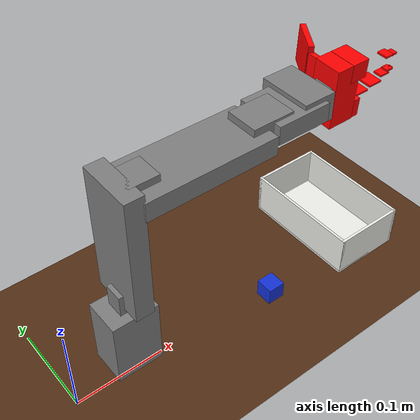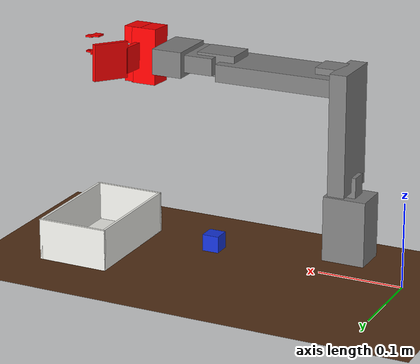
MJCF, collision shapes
<mujoco model="so101_pick_place_scene">

  <compiler angle="radian" autolimits="true" meshdir="../../../so101_assets/assets"/>

  <include file="../../../so101_assets/so101.xml"/>

  <visual>
    <headlight diffuse="0.6 0.6 0.6" ambient="0.3 0.3 0.3" specular="0 0 0"/>
    <rgba haze="0.15 0.25 0.35 1"/>
    <global azimuth="160" elevation="-25"/>
    <quality shadowsize="4096"/>
  </visual>

  <asset>
    <texture type="skybox" builtin="gradient" rgb1="0.3 0.5 0.7"
             rgb2="0 0 0" width="512" height="3072"/>
    <!-- Dark glossy wood, like the bench tabletop. Two near-identical
         browns: enough variation to give the eye a depth cue, not enough
         to read as a checkerboard. -->
    <texture type="2d" name="wood" builtin="checker"
             rgb1="0.34 0.19 0.09" rgb2="0.32 0.18 0.085"
             width="512" height="512"/>
    <material name="wood" texture="wood" texuniform="true"
              texrepeat="10 10" reflectance="0.25" specular="0.4" shininess="0.6"/>
    <material name="cube_mat" rgba="0.08 0.20 0.85 1" specular="0.3" shininess="0.3"/>
    <material name="box_mat" rgba="0.94 0.94 0.92 1" specular="0.1"/>
  </asset>

  <default>
    <default class="cube_collision">
      <!-- Same contact settings as robot_cube_scene.xml -- see its comment
           for why condim=6 and why the jaws' params win the grasp contact. -->
      <geom contype="1" conaffinity="1" condim="6"
            friction="0.8 0.02 0.001" solref="0.01 1" solimp="0.95 0.99 0.001"/>
    </default>
    <default class="box_wall">
      <geom type="box" contype="1" conaffinity="1" condim="3"
            friction="0.6 0.005 0.0001" material="box_mat"/>
    </default>
  </default>

  <worldbody>
    <light pos="0 0 1.5" dir="0 0 -1" directional="true"/>
    <geom name="floor" size="0 0 0.05" type="plane" material="wood"/>

    <!-- Straight down over the cube and the box together. -->
    <camera name="overhead" pos="0.30 0.01 0.80" xyaxes="0 1 0 -1 0 0"/>

    <!-- Roughly where the bench photo was taken from: behind the cube,
         looking out toward the box. -->
    <camera name="bench_view" pos="0.08 -0.01 0.28" mode="targetbody" target="pick_box"/>

    <!-- Wide angle on the whole arm plus both objects. -->
    <camera name="workspace" pos="0.85 -0.70 0.60" mode="targetbody" target="pick_box"/>

    <body name="cube" pos="0.239 -0.012 0.0100">
      <freejoint name="cube_freejoint"/>
      <geom name="cube_geom" type="box" size="0.010 0.010 0.010"
            mass="0.0032" material="cube_mat" class="cube_collision"/>
    </body>

    <body name="pick_box" pos="0.364 0.033 0">
      <geom name="box_bottom" class="box_wall" size="0.0425 0.0700 0.0015" pos="0 0 0.0015"/>
      <geom name="box_wall_near" class="box_wall" size="0.0015 0.0700 0.0245" pos="-0.0410 0 0.0245"/>
      <geom name="box_wall_far" class="box_wall" size="0.0015 0.0700 0.0245" pos="0.0410 0 0.0245"/>
      <geom name="box_wall_left" class="box_wall" size="0.0425 0.0015 0.0245" pos="0 0.0685 0.0245"/>
      <geom name="box_wall_right" class="box_wall" size="0.0425 0.0015 0.0245" pos="0 -0.0685 0.0245"/>
    </body>
  </worldbody>
</mujoco>

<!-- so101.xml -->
<mujoco model="so101">
  <option integrator="implicitfast" timestep="0.005" cone="elliptic" iterations="10" ls_iterations="20" impratio="10"/>

  <compiler angle="radian" autolimits="true"/>

  <visual>
    <scale contactwidth="0.1" contactheight="0.05" forcewidth="0.02" framelength="0.75" framewidth="0.025"
      camera="0.2"/>
  </visual>

  <default>
    <mesh maxhullvert="128"/>

    <default class="so101">
      <joint damping="1" frictionloss="0.1" armature="0.005"/>
      <position kp="50"/>
      <default class="visual">
        <geom type="mesh" contype="0" conaffinity="0" group="2"/>
      </default>
      <default class="collision">
        <geom group="3" condim="3"/>
      </default>
      <default class="collision_gripper">
        <geom group="3" condim="6" friction="0.45 5e-3 5e-4" solref="0.01 1" priority="1" rgba="1.0 0 0 1.0" mass="0"/>
      </default>
      <default class="collision_gripper_mesh">
        <geom group="4" condim="6" friction="1 5e-3 5e-4" solref="0.01 1" priority="1" rgba="1.0 0 0 1.0" mass="0"
          contype="0" conaffinity="0"/>
      </default>
    </default>

    <default class="sts3215">
      <geom contype="0" conaffinity="0"/>
      <joint damping="0.60" frictionloss="0.052" armature="0.028"/>
      <position kp="400" kv="25" forcerange="-2.94 2.94"/>
    </default>

    <default class="backlash">
      <!-- +/- 0.5° of backlash – not added to any joints for now -->
      <joint damping="0.01" frictionloss="0" armature="0.01" limited="true" range="-0.0087267 0.0087267"/>
    </default>
  </default>

  <asset>
    <mesh file="waveshare_mounting_plate_so101_v2.stl"/>
    <mesh file="sts3215_03a_v1.stl"/>
    <mesh file="motor_holder_so101_base_v1.stl"/>
    <mesh file="wrist_roll_follower_so101_v1.stl"/>
    <mesh file="moving_jaw_so101_v1.stl"/>
    <mesh file="base_motor_holder_so101_v1.stl"/>
    <mesh file="upper_arm_so101_v1.stl"/>
    <mesh file="wrist_roll_pitch_so101_v2.stl"/>
    <mesh file="under_arm_so101_v1.stl"/>
    <mesh file="rotation_pitch_so101_v1.stl"/>
    <mesh file="motor_holder_so101_wrist_v1.stl"/>
    <mesh file="sts3215_03a_no_horn_v1.stl"/>
    <mesh file="base_so101_v2.stl"/>
    <mesh file="moving_jaw_so101_gripper_v1.stl"/>
    <mesh file="wrist_roll_follower_so101_camera_mount.stl"/>
    <!-- Gripper collision meshes. -->
    <mesh maxhullvert="64" file="wrist_roll_follower_so101_gripper_part0_v1.stl"/>
    <mesh maxhullvert="64" file="moving_jaw_so101_gripper_part0_v1.stl"/>
    <mesh maxhullvert="64" file="moving_jaw_so101_gripper_part1_v1.stl"/>
    <material name="base_motor_holder_so101_v1_material" rgba="0.94 0.90 0.82 1"/>
    <material name="base_so101_v2_material" rgba="0.94 0.90 0.82 1"/>
    <material name="sts3215_03a_v1_material" rgba="0.15 0.15 0.15 1"/>
    <material name="waveshare_mounting_plate_so101_v2_material" rgba="0.94 0.90 0.82 1"/>
    <material name="motor_holder_so101_base_v1_material" rgba="0.94 0.90 0.82 1"/>
    <material name="rotation_pitch_so101_v1_material" rgba="0.94 0.90 0.82 1"/>
    <material name="upper_arm_so101_v1_material" rgba="0.94 0.90 0.82 1"/>
    <material name="under_arm_so101_v1_material" rgba="0.94 0.90 0.82 1"/>
    <material name="motor_holder_so101_wrist_v1_material" rgba="0.94 0.90 0.82 1"/>
    <material name="sts3215_03a_no_horn_v1_material" rgba="0.15 0.15 0.15 1.0"/>
    <material name="wrist_roll_pitch_so101_v2_material" rgba="0.94 0.90 0.82 1"/>
    <material name="wrist_roll_follower_so101_v1_material" rgba="0.94 0.90 0.82 1"/>
    <material name="moving_jaw_so101_v1_material" rgba="0.94 0.90 0.82 1"/>
  </asset>

  <worldbody>
    <!-- Link base -->
    <body name="base" pos="0 0 0" quat="1 0 0 0" childclass="so101">
      <inertial pos="0.0137179 -5.19711e-05 0.0334843" mass="0.147"
        fullinertia="0.000114686 0.000136117 0.000130364 -4.59787e-07 4.97151e-06 9.75275e-08"/>
      <!-- Part base_motor_holder_so101_v1 -->
      <geom type="mesh" class="visual" pos="-0.006365 -9.9e-05 -0.0024" quat="1 1 1 1" mesh="base_motor_holder_so101_v1"
        material="base_motor_holder_so101_v1_material"/>
      <!-- Part base_so101_v2 -->
      <geom type="mesh" class="visual" pos="-0.006365 0 -0.0024" quat="1 1 1 1" mesh="base_so101_v2"
        material="base_so101_v2_material"/>
      <!-- Part sts3215_03a_v1 -->
      <geom type="mesh" class="visual" pos="0.0263353 0 0.0437" quat="1 0 0 0" mesh="sts3215_03a_v1"
        material="sts3215_03a_v1_material"/>
      <!-- Part waveshare_mounting_plate_so101_v2 -->
      <geom type="mesh" class="visual" pos="-0.0309827 -0.000199 0.0474" quat="1 1 1 1"
        mesh="waveshare_mounting_plate_so101_v2" material="waveshare_mounting_plate_so101_v2_material"/>
      <!-- Frame baseframe -->
      <site group="3" name="baseframe" pos="0 0 0" quat="1 0 0 0"/>
      <!-- Link shoulder -->
      <body name="shoulder" pos="0.0388353 0 0.0624" quat="0 0 -1 0">
        <!-- Joint from base to shoulder -->
        <joint axis="0 0 1" name="shoulder_pan" type="hinge" range="-1.91986 1.91986" class="sts3215"/>
        <inertial pos="-0.0307604 -1.7e-05 -0.0252713" mass="0.100006"
          fullinertia="8.3759e-05 8.10403e-05 2.39783e-05 7.55525e-08 -1.16342e-06 1.54663e-07"/>
        <!-- Part sts3215_03a_v1_2 -->
        <geom type="mesh" class="visual" pos="-0.030399 0.000422 -0.0417" quat="1 1 1 -1" mesh="sts3215_03a_v1"
          material="sts3215_03a_v1_material"/>
        <geom type="box" class="collision" pos="-0.030399 0.000422 -0.0387" quat="1 1 1 -1" size="0.023 0.015 0.01"/>
        <!-- Part motor_holder_so101_base_v1 -->
        <geom type="mesh" class="visual" pos="-0.067599 -0.0001778 0.01585" quat="1 1 -1 1"
          mesh="motor_holder_so101_base_v1" material="motor_holder_so101_base_v1_material"/>
        <geom type="box" class="collision" pos="-0.025 0 0.0" quat="1 1 -1 1" size="0.038 0.025 0.02"/>
        <!-- Part rotation_pitch_so101_v1 -->
        <geom type="mesh" class="visual" pos="0.012201 2.2e-05 0.0464" quat="1 -1 0 0" mesh="rotation_pitch_so101_v1"
          material="rotation_pitch_so101_v1_material"/>
        <!-- Link upper_arm -->
        <body name="upper_arm" pos="-0.0303992 -0.0182778 -0.0542" quat="1 -1 -1 -1">
          <!-- Joint from shoulder to upper_arm -->
          <joint axis="0 0 1" name="shoulder_lift" type="hinge" range="-1.7453293 1.7453293" class="sts3215"/>
          <inertial pos="-0.089847 -0.008382 0.018409" mass="0.103"
            fullinertia="4.08002e-05 0.000147318 0.000142487 -1.97819e-05 -4.03016e-08 8.97326e-09"/>
          <!-- Part sts3215_03a_v1_3 -->
          <geom type="mesh" class="visual" pos="-0.11257 -0.0155 0.0187" quat="0 -1 1 0" mesh="sts3215_03a_v1"
            material="sts3215_03a_v1_material"/>
          <geom type="box" class="collision" pos="-0.06 0 0.02" quat="0 -1 1 0" size="0.01 0.07 0.03"/>
          <!-- Part upper_arm_so101_v1 -->
          <geom type="mesh" class="visual" pos="-0.065085 0.012 0.0182" quat="0 1 0 0" mesh="upper_arm_so101_v1"
            material="upper_arm_so101_v1_material"/>
          <geom type="box" class="collision" pos="-0.12 -0.014 0.0182" quat="0 1 0 0" size="0.01 0.02 0.015"/>
          <!-- Link lower_arm -->
          <body name="lower_arm" pos="-0.11257 -0.028 0" quat="1 0 0 1">
            <!-- Joint from upper_arm to lower_arm -->
            <!-- Note: 5-degree calibration offset applied to joint range -->
            <joint axis="0 0 1" name="elbow_flex" type="hinge" range="-1.69 1.69" class="sts3215"/>
            <inertial pos="-0.098070 0.0032438 0.018283" mass="0.104"
              fullinertia="2.87438e-05 0.000159844 0.00014529 7.41152e-06 1.26409e-06 -4.90188e-08"/>
            <!-- Part under_arm_so101_v1 -->
            <geom type="mesh" class="visual" pos="-0.06485 -0.032 0.0182" quat="0 1 0 0" mesh="under_arm_so101_v1"
              material="under_arm_so101_v1_material"/>
            <geom type="box" class="collision" pos="-0.05 0 0.0182" quat="0 1 0 0" size="0.07 0.01 0.03"/>
            <!-- Part motor_holder_so101_wrist_v1 -->
            <geom type="mesh" class="visual" pos="-0.06485 -0.032 0.018" quat="0 -1 0 0"
              mesh="motor_holder_so101_wrist_v1" material="motor_holder_so101_wrist_v1_material"/>
            <geom type="box" class="collision" pos="-0.125 0.005 0.018" quat="0 -1 0 0" size="0.023 0.013 0.018"/>
            <!-- Part sts3215_03a_v1_4 -->
            <geom type="mesh" class="visual" pos="-0.1224 0.0052 0.0187" quat="0 0 1 0" mesh="sts3215_03a_v1"
              material="sts3215_03a_v1_material"/>
            <!-- Link wrist -->
            <body name="wrist" pos="-0.1349 0.0052 0" quat="1 0 0 -1">
              <!-- Joint from lower_arm to wrist -->
              <joint axis="0 0 1" name="wrist_flex" type="hinge" range="-1.658063 1.658063" class="sts3215"/>
              <inertial pos="-0.000103312 -0.0386143 0.0281156" mass="0.079"
                fullinertia="3.68263e-05 2.5391e-05 2.1e-05 1.7893e-08 -5.28128e-08 3.6412e-06"/>
              <!-- Part sts3215_03a_no_horn_v1 -->
              <geom type="mesh" class="visual" pos="0 -0.0424 0.0306" quat="1 1 1 -1" mesh="sts3215_03a_no_horn_v1"
                material="sts3215_03a_no_horn_v1_material"/>
              <geom type="box" class="collision" pos="0 -0.0424 0.0256" quat="1 1 1 -1" size="0.029 0.015 0.018"/>
              <!-- Part wrist_roll_pitch_so101_v2 -->
              <geom type="mesh" class="visual" pos="0 -0.028 0.0181" quat="1 -1 -1 -1" mesh="wrist_roll_pitch_so101_v2"
                material="wrist_roll_pitch_so101_v2_material"/>
              <geom type="box" class="collision" pos="0 -0.02 0.0191" quat="1 -1 -1 -1" size="0.027 0.01 0.03"/>
              <!-- Link gripper -->
              <body name="gripper" pos="5.55112e-17 -0.0611 0.0181" quat="0.0172091 -0.0172091 0.706897 0.706897">
                <!-- Joint from wrist to gripper -->
                <joint axis="0 0 1" name="wrist_roll" type="hinge" range="-2.7438473 2.7438473" class="sts3215"/>
                <inertial pos="0.000214 0.000245 -0.025187" mass="0.087"
                  fullinertia="2.75087e-05 4.33657e-05 3.45059e-05 -3.35241e-07 -5.7352e-06 -5.17847e-08"/>
                <!-- Part sts3215_03a_v1_5 -->
                <geom type="mesh" class="visual" pos="0.0077 0.0001 -0.0234" quat="1 -1 0 0" mesh="sts3215_03a_v1"
                  material="sts3215_03a_v1_material"/>
                <!-- Part wrist_roll_follower_so101_v1 (fixed jaw) -->
                <geom type="mesh" class="visual" pos="0 -0.000218 0.00095" quat="0 1 0 0"
                  mesh="wrist_roll_follower_so101_v1" material="wrist_roll_follower_so101_v1_material"/>
                <geom type="box" class="collision" pos="0 -0.000218 0.00095" quat="0 1 0 0" size="0.01 0.01 0.018"/>
                <!-- Part wrist_roll_follower_so101_v1 gripper collision  -->
                <geom name="fixed_jaw_box1" class="collision_gripper" type="box" size="0.0325 0.015 0.015"
                  pos="-0.0025 0 -0.022"/>
                <geom name="fixed_jaw_box2" class="collision_gripper" type="box" size="0.01 0.015 0.005"
                  pos="-0.024 0 -0.04"/>
                <geom name="fixed_jaw_sph_tip1" class="collision_gripper" type="sphere" size="0.00075"
                  pos="-0.0081 0 -0.101"/>
                <geom name="fixed_jaw_sph_tip2" class="collision_gripper" type="sphere" size="0.00075"
                  pos="-0.0081 0.0035 -0.0975"/>
                <geom name="fixed_jaw_sph_tip3" class="collision_gripper" type="sphere" size="0.00075"
                  pos="-0.0081 -0.0035 -0.0975"/>
                <geom type="mesh" class="collision_gripper_mesh" pos="0 -0.000218 0.00095" quat="0 1 0 0"
                  mesh="wrist_roll_follower_so101_gripper_part0_v1"/>
                <geom name="fixed_jaw_box3" class="collision_gripper" type="capsule" size="0.0011 0.002"
                  pos="-0.009 0 -0.103" euler="1.57 0 0"/>
                <geom name="fixed_jaw_box4" class="collision_gripper" type="box" size="0.001 0.004 0.004"
                  pos="-0.009 0 -0.0982"/>
                <geom name="fixed_jaw_box5" class="collision_gripper" type="box" size="0.001 0.005 0.006"
                  pos="-0.0108 0 -0.0905"/>
                <geom name="fixed_jaw_box6" class="collision_gripper" type="box" size="0.001 0.009 0.008"
                  pos="-0.0125 0 -0.0727"/>
                <geom name="fixed_jaw_box7" class="collision_gripper" type="box" size="0.001 0.01 0.008"
                  pos="-0.0143 0 -0.053"/>
                <site group="3" name="gripperframe" pos="0.012 -0.000218 -0.098127" quat="0 0 1 0"/>
                <!-- Camera mount -->
                <body name="camera_mount">
                  <camera name="wrist_cam" mode="fixed" pos="0.0 0.075 -0.025" euler="-0.1745 0 0" resolution="1920 1080"
                    fovy="48.5"/>
                  <geom type="mesh" mass="0.012" class="visual" pos="0 -0.000218 0.00095" quat="0 1 0 0"
                    mesh="wrist_roll_follower_so101_camera_mount" material="wrist_roll_follower_so101_v1_material"/>
                  <geom name="camera_box1" class="collision_gripper" type="box" size="0.015 0.015 0.003"
                    pos="-0.0025 0.03 -0.03"/>
                  <geom name="camera_box2" class="collision_gripper" type="box" size="0.021 0.021 0.003"
                    pos="-0.001 0.06 -0.04" euler="-0.55 0 0"/>
                </body>
                <!-- Link moving_jaw_so101_v1 -->
                <body name="moving_jaw_so101_v1" pos="0.0202 0.0188 -0.0234" quat="1 1 0 0">
                  <!-- Joint from gripper to moving_jaw_so101_v1 -->
                  <joint axis="0 0 1" name="gripper" type="hinge" range="-0.174533 1.7453292" class="sts3215"/>
                  <inertial pos="-0.001575 -0.0300244 0.0192755" mass="0.012"
                    fullinertia="6.61427e-06 1.89032e-06 5.28738e-06 -3.19807e-07 -5.90717e-09 -1.09945e-07"/>
                  <!-- Part moving_jaw_so101_v1 -->
                  <geom type="mesh" class="visual" pos="0 0 0.0189" quat="1 0 0 0" mesh="moving_jaw_so101_v1"
                    material="moving_jaw_so101_v1_material"/>
                  <!-- Part moving_jaw_so101_v1 gripper collisions -->
                  <geom type="mesh" class="collision_gripper_mesh" pos="0 0 0.0189" quat="1 0 0 0"
                    mesh="moving_jaw_so101_gripper_part0_v1"/>
                  <geom type="mesh" class="collision_gripper_mesh" pos="0 0 0.0189" quat="1 0 0 0"
                    mesh="moving_jaw_so101_gripper_part1_v1"/>
                  <geom name="moving_jaw_box1" class="collision_gripper" type="box" size="0.01 0.01 0.015"
                    pos="-0.0 -0.013 0.019"/>
                  <geom name="moving_jaw_sph_tip1" class="collision_gripper" type="sphere" size="0.00075"
                    pos="-0.012 -0.078 0.0192"/>
                  <geom name="moving_jaw_sph_tip2" class="collision_gripper" type="sphere" size="0.00075"
                    pos="-0.012 -0.0745 0.0225"/>
                  <geom name="moving_jaw_sph_tip3" class="collision_gripper" type="sphere" size="0.00075"
                    pos="-0.012 -0.0745 0.0155"/>
                  <geom name="moving_jaw_box2" class="collision_gripper" type="box" size="0.001 0.004 0.004"
                    pos="-0.0113 -0.076 0.01875"/>
                  <geom name="moving_jaw_box3" class="collision_gripper" type="box" size="0.001 0.005 0.006"
                    pos="-0.0093 -0.067 0.01875"/>
                </body>
              </body>
            </body>
          </body>
        </body>
      </body>
    </body>
  </worldbody>

  <actuator>
    <position class="sts3215" name="shoulder_pan" joint="shoulder_pan" ctrlrange="-1.91986 1.91986"/>
    <position class="sts3215" name="shoulder_lift" joint="shoulder_lift" ctrlrange="-1.74533 1.74533"/>
    <position class="sts3215" name="elbow_flex" joint="elbow_flex" ctrlrange="-1.69 1.69"/>
    <position class="sts3215" name="wrist_flex" joint="wrist_flex" ctrlrange="-1.65806 1.65806" kp="20" kv="1"/>
    <position class="sts3215" name="wrist_roll" joint="wrist_roll" ctrlrange="-2.74385 2.84121" kv="35"/>
    <position class="sts3215" name="gripper" joint="gripper" ctrlrange="-0.17453 1.74533" kp="80" kv="6"/>
  </actuator>
</mujoco>
